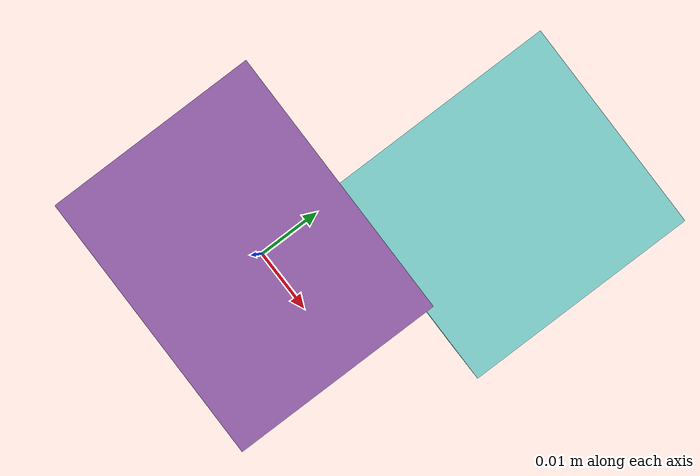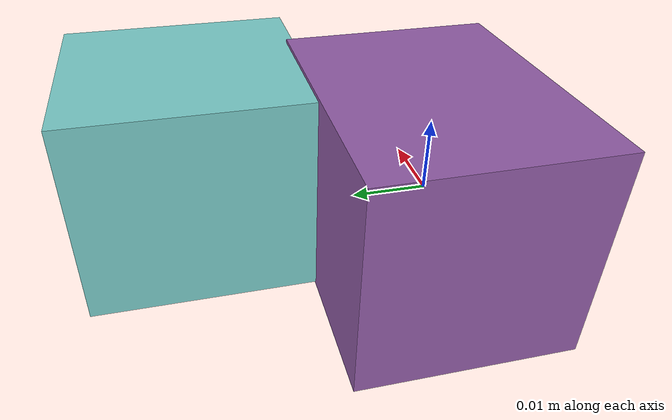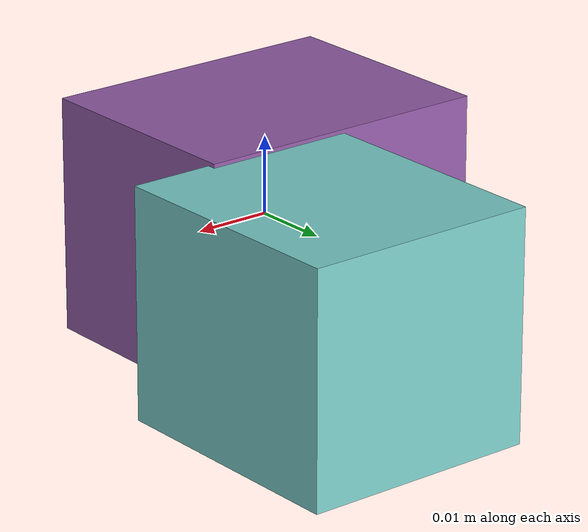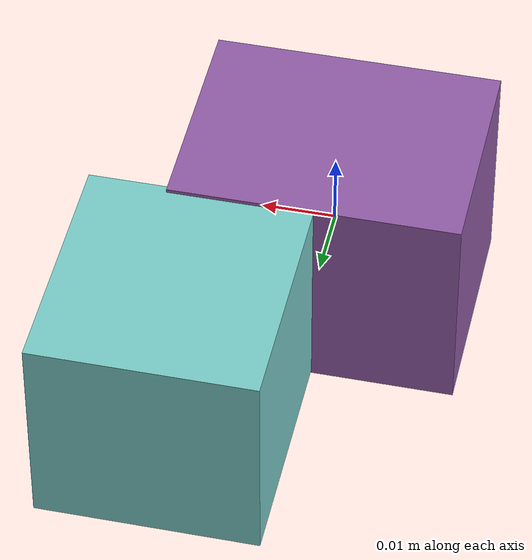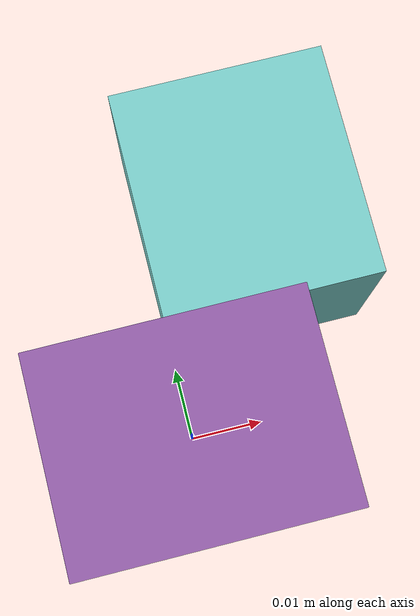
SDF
<sdf version="1.4"><world name="default"><model name="object0"><link name="link1"><pose>0 0 0 0 0 0</pose><inertial><pose>0 0 0 0 0 0</pose><mass>0.02087834614627672</mass><inertia><ixx>3.131751921941508e-06</ixx><ixy>0</ixy><iyy>4.16675116949737e-06</iyy><ixz>0</ixz><iyz>0</iyz><izz>4.16675116949737e-06</izz></inertia></inertial><visual name="link1_visual"><pose>0 0  0 0 0 0</pose><geometry><box><size>0.03866360397458652 0.03 0.03</size></box></geometry><material><diffuse>0.5742682484725625 0.36385869484428024 0.6585336508705542 1</diffuse></material></visual><collision><pose>0 0  0 0 0 0</pose><geometry><box><size>0.03866360397458652 0.03 0.03</size></box></geometry></collision></link><link name="link2"><pose>0.014952358249328473 0.03030638007059453 0 0 0 0</pose><inertial><pose>0 0 0 0 0 0</pose><mass>0.017669197547376687</mass><inertia><ixx>2.8147717513957578e-06</ixx><ixy>0</ixy><iyy>2.5635060774985674e-06</iyy><ixz>0</ixz><iyz>0</iyz><izz>2.901645306003693e-06</izz></inertia></inertial><visual name="link2_visual"><pose>0 0  0 0 0 0</pose><geometry><box><size>0.03 0.03272073619884572 0.028999999999999998</size></box></geometry><material><diffuse>0.47861609921604265 0.8034834063572456 0.7902427895195607 1</diffuse></material></visual><collision><pose>0 0  0 0 0 0</pose><geometry><box><size>0.03 0.03272073619884572 0.028999999999999998</size></box></geometry></collision></link><joint name="link_joint_0" type="fixed"><parent>link1</parent><child>link2</child><pose>0 0 0 0 0 0</pose><axis><xyz>0 0 1</xyz></axis></joint></model></world></sdf>
